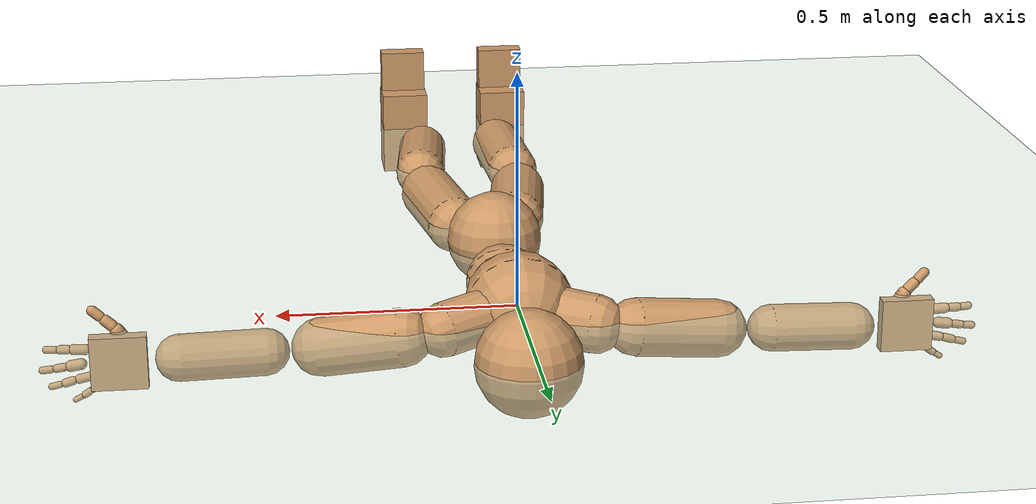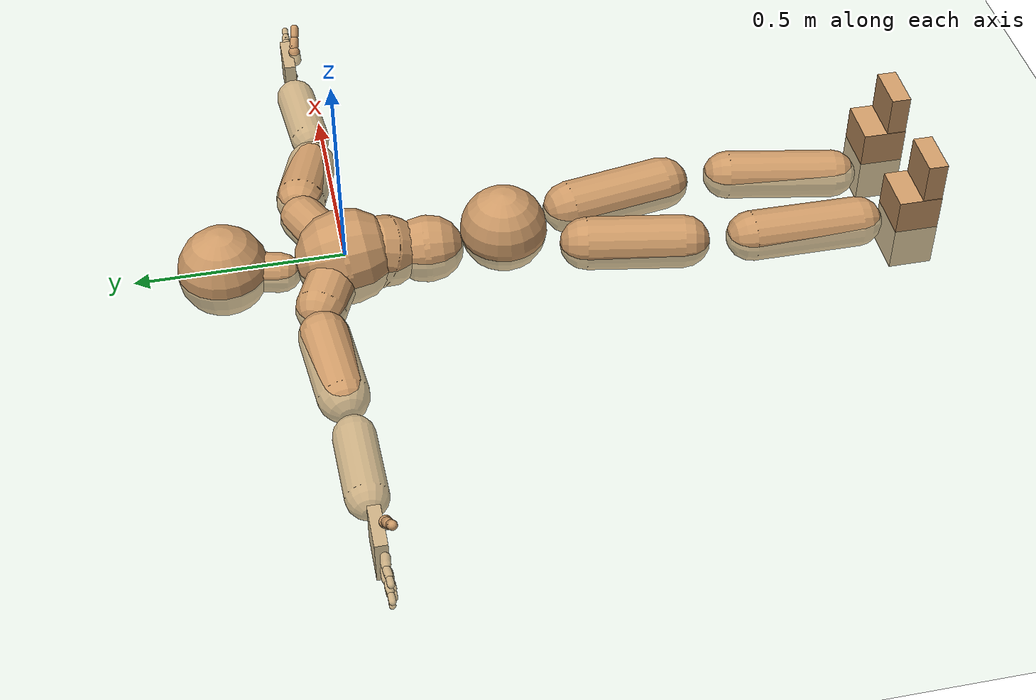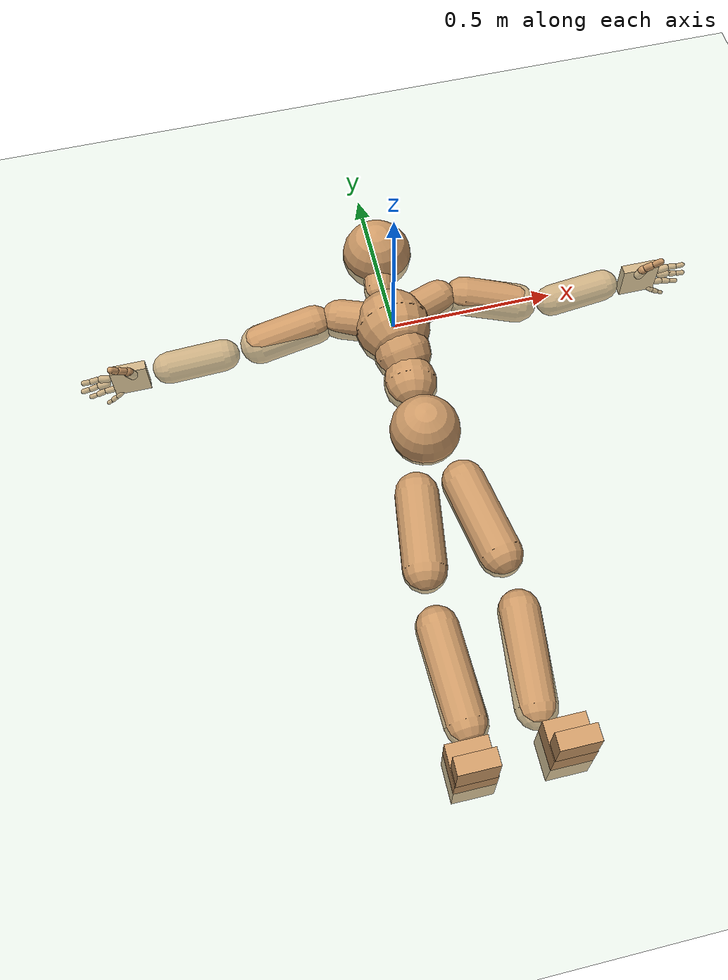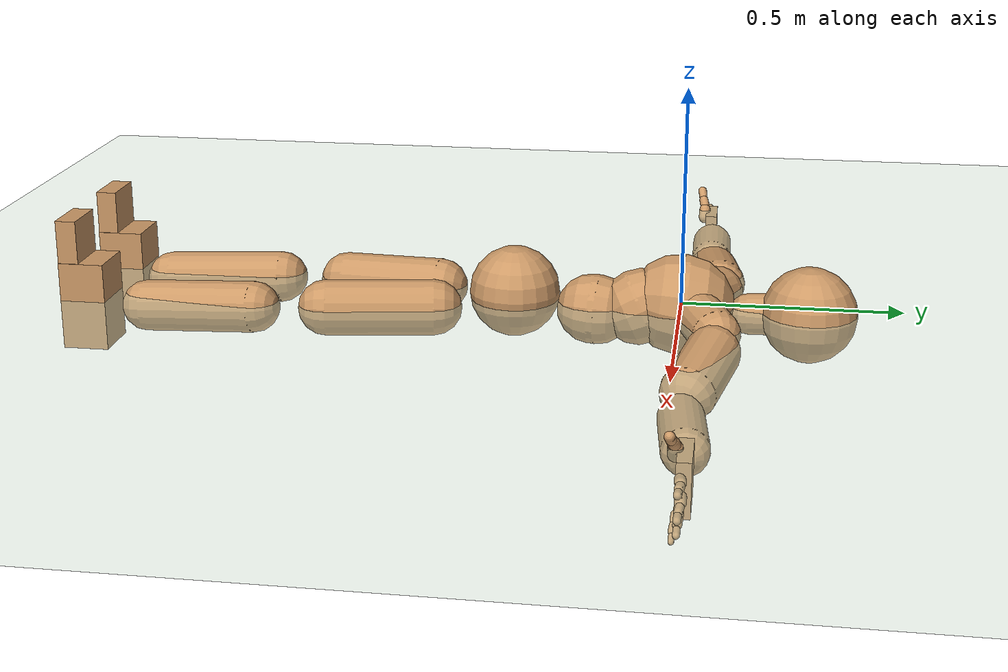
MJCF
<mujoco model="humanoid">
  <compiler coordinate="local"/>
  <default>
    <joint damping="0.0" armature="0.01" stiffness="0.0" limited="true"/>
    <geom conaffinity="1" condim="3" contype="7" margin="0.001" rgba="0.8 0.6 .4 1"/>
  </default>
  <asset>
    <texture type="skybox" builtin="gradient" rgb1=".4 .5 .6" rgb2="0 0 0" width="100" height="100"/>
    <texture builtin="flat" height="1278" mark="cross" markrgb="1 1 1" name="texgeom" random="0.01" rgb1="0.8 0.6 0.4" rgb2="0.8 0.6 0.4" type="cube" width="127"/>
    <texture builtin="checker" height="100" name="texplane" rgb1="0 0 0" rgb2="0.8 0.8 0.8" type="2d" width="100"/>
    <material name="MatPlane" reflectance="0.5" shininess="1" specular="1" texrepeat="60 60" texture="texplane"/>
    <material name="geom" texture="texgeom" texuniform="true"/>
  </asset>
  <worldbody>
    <light cutoff="100" diffuse="1 1 1" dir="-0 0 -1.3" directional="true" exponent="1" pos="0 0 1.3" specular=".1 .1 .1"/>
    <geom conaffinity="1" condim="3" name="floor" pos="0 0 0" rgba="0.8 0.9 0.8 1" size="100 100 .2" type="plane" material="MatPlane"/>
    <body name="Pelvis" pos="0.0025 -0.3857 0.013">
      <freejoint name="Pelvis"/>
      <geom type="sphere" contype="1" conaffinity="1" density="4629.6296296296305" size="0.1051" pos="0.0000 0.0000 0.0000" name="Pelvis"/>
      <body name="L_Hip" pos="0.0562 -0.0969 -0.0269">
        <joint name="L_Hip_x" type="hinge" pos="0 0 0" axis="1 0 0" user="250 2.5 1 500 10 2" armature="0.01" range="-90.0000 90.0000" damping="0" stiffness="0"/>
        <joint name="L_Hip_y" type="hinge" pos="0 0 0" axis="0 1 0" user="250 2.5 1 500 10 2" armature="0.01" range="-90.0000 90.0000" damping="0" stiffness="0"/>
        <joint name="L_Hip_z" type="hinge" pos="0 0 0" axis="0 0 1" user="250 2.5 1 500 10 2" armature="0.01" range="-90.0000 90.0000" damping="0" stiffness="0"/>
        <geom type="capsule" contype="1" conaffinity="1" density="2040.816327" fromto="0.0138 -0.0816 0.0004 0.0550 -0.3264 0.0014" size="0.0648" name="L_Hip"/>
        <body name="L_Knee" pos="0.0688 -0.408 0.0018">
          <joint name="L_Knee_x" type="hinge" pos="0 0 0" axis="1 0 0" user="250 2.5 1 500 10 2" armature="0.01" range="-180.0000 180.0000" damping="0" stiffness="0"/>
          <joint name="L_Knee_y" type="hinge" pos="0 0 0" axis="0 1 0" user="250 2.5 1 500 10 2" armature="0.01" range="-5.6250 5.6250" damping="0" stiffness="0"/>
          <joint name="L_Knee_z" type="hinge" pos="0 0 0" axis="0 0 1" user="250 2.5 1 500 10 2" armature="0.01" range="-5.6250 5.6250" damping="0" stiffness="0"/>
          <geom type="capsule" contype="1" conaffinity="1" density="1234.567901" fromto="-0.0093 -0.0887 -0.0060 -0.0372 -0.3550 -0.0239" size="0.0596" name="L_Knee"/>
          <body name="L_Ankle" pos="-0.0465 -0.4437 -0.0299">
            <joint name="L_Ankle_x" type="hinge" pos="0 0 0" axis="1 0 0" user="150 2.5 1 500 10 2" armature="0.01" range="-90.0000 90.0000" damping="0" stiffness="0"/>
            <joint name="L_Ankle_y" type="hinge" pos="0 0 0" axis="0 1 0" user="150 2.5 1 500 10 2" armature="0.01" range="-90.0000 90.0000" damping="0" stiffness="0"/>
            <joint name="L_Ankle_z" type="hinge" pos="0 0 0" axis="0 0 1" user="150 2.5 1 500 10 2" armature="0.01" range="-90.0000 90.0000" damping="0" stiffness="0"/>
            <geom type="box" density="464.808023" pos="0.0475 -0.0332 0.0270" size="0.0578 0.0529 0.1021" quat="1.0000 0.0000 0.0000 0.0000" name="L_Ankle"/>
            <body name="L_Toe" pos="0.0543 -0.0663 0.1396">
              <joint name="L_Toe_x" type="hinge" pos="0 0 0" axis="1 0 0" user="150 1 1 500 1 1" armature="0.01" range="-90.0000 90.0000" damping="0" stiffness="0"/>
              <joint name="L_Toe_y" type="hinge" pos="0 0 0" axis="0 1 0" user="150 1 1 500 1 1" armature="0.01" range="-45.0000 45.0000" damping="0" stiffness="0"/>
              <joint name="L_Toe_z" type="hinge" pos="0 0 0" axis="0 0 1" user="150 1 1 500 1 1" armature="0.01" range="-45.0000 45.0000" damping="0" stiffness="0"/>
              <geom type="box" density="424.207688" pos="-0.0068 0.0039 0.0308" size="0.0556 0.0237 0.0591" quat="1.0000 0.0000 0.0000 0.0000" name="L_Toe"/>
            </body>
          </body>
        </body>
      </body>
      <body name="R_Hip" pos="-0.0609 -0.1113 -0.018">
        <joint name="R_Hip_x" type="hinge" pos="0 0 0" axis="1 0 0" user="250 2.5 1 500 10 2" armature="0.01" range="-90.0000 90.0000" damping="0" stiffness="0"/>
        <joint name="R_Hip_y" type="hinge" pos="0 0 0" axis="0 1 0" user="250 2.5 1 500 10 2" armature="0.01" range="-90.0000 90.0000" damping="0" stiffness="0"/>
        <joint name="R_Hip_z" type="hinge" pos="0 0 0" axis="0 0 1" user="250 2.5 1 500 10 2" armature="0.01" range="-90.0000 90.0000" damping="0" stiffness="0"/>
        <geom type="capsule" contype="1" conaffinity="1" density="2040.816327" fromto="-0.0113 -0.0775 -0.0019 -0.0453 -0.3100 -0.0075" size="0.0643" name="R_Hip"/>
        <body name="R_Knee" pos="-0.0566 -0.3875 -0.0093">
          <joint name="R_Knee_x" type="hinge" pos="0 0 0" axis="1 0 0" user="250 2.5 1 500 10 2" armature="0.01" range="-180.0000 180.0000" damping="0" stiffness="0"/>
          <joint name="R_Knee_y" type="hinge" pos="0 0 0" axis="0 1 0" user="250 2.5 1 500 10 2" armature="0.01" range="-5.6250 5.6250" damping="0" stiffness="0"/>
          <joint name="R_Knee_z" type="hinge" pos="0 0 0" axis="0 0 1" user="250 2.5 1 500 10 2" armature="0.01" range="-5.6250 5.6250" damping="0" stiffness="0"/>
          <geom type="capsule" contype="1" conaffinity="1" density="1234.567901" fromto="0.0029 -0.0906 -0.0034 0.0115 -0.3624 -0.0134" size="0.0613" name="R_Knee"/>
          <body name="R_Ankle" pos="0.0144 -0.4529 -0.0168">
            <joint name="R_Ankle_x" type="hinge" pos="0 0 0" axis="1 0 0" user="150 1 1 500 10 2" armature="0.01" range="-90.0000 90.0000" damping="0" stiffness="0"/>
            <joint name="R_Ankle_y" type="hinge" pos="0 0 0" axis="0 1 0" user="150 1 1 500 10 2" armature="0.01" range="-90.0000 90.0000" damping="0" stiffness="0"/>
            <joint name="R_Ankle_z" type="hinge" pos="0 0 0" axis="0 0 1" user="150 1 1 500 10 2" armature="0.01" range="-90.0000 90.0000" damping="0" stiffness="0"/>
            <geom type="box" density="464.810838" pos="-0.0278 -0.0301 0.0161" size="0.0578 0.0529 0.1021" quat="1.0000 0.0000 0.0000 0.0000" name="R_Ankle"/>
            <body name="R_Toe" pos="-0.0436 -0.066 0.1404">
              <joint name="R_Toe_x" type="hinge" pos="0 0 0" axis="1 0 0" user="150 1 1 500 1 1" armature="0.01" range="-90.0000 90.0000" damping="0" stiffness="0"/>
              <joint name="R_Toe_y" type="hinge" pos="0 0 0" axis="0 1 0" user="150 1 1 500 1 1" armature="0.01" range="-45.0000 45.0000" damping="0" stiffness="0"/>
              <joint name="R_Toe_z" type="hinge" pos="0 0 0" axis="0 0 1" user="150 1 1 500 1 1" armature="0.01" range="-45.0000 45.0000" damping="0" stiffness="0"/>
              <geom type="box" density="424.223752" pos="0.0158 0.0066 0.0190" size="0.0556 0.0237 0.0591" quat="1.0000 0.0000 0.0000 0.0000" name="R_Toe"/>
            </body>
          </body>
        </body>
      </body>
      <body name="Torso" pos="-0.0036 0.1136 -0.0315">
        <joint name="Torso_x" type="hinge" pos="0 0 0" axis="1 0 0" user="500 5 1 500 10 2" armature="0.01" range="-60.0000 60.0000" damping="0" stiffness="0"/>
        <joint name="Torso_y" type="hinge" pos="0 0 0" axis="0 1 0" user="500 5 1 500 10 2" armature="0.01" range="-60.0000 60.0000" damping="0" stiffness="0"/>
        <joint name="Torso_z" type="hinge" pos="0 0 0" axis="0 0 1" user="500 5 1 500 10 2" armature="0.01" range="-60.0000 60.0000" damping="0" stiffness="0"/>
        <geom type="capsule" contype="1" conaffinity="1" density="2040.816327" fromto="0.0055 0.0659 -0.0033 0.0067 0.0805 -0.0040" size="0.0807" name="Torso"/>
        <body name="Spine" pos="0.0121 0.1464 -0.0073">
          <joint name="Spine_x" type="hinge" pos="0 0 0" axis="1 0 0" user="500 5 1 500 10 2" armature="0.01" range="-60.0000 60.0000" damping="0" stiffness="0"/>
          <joint name="Spine_y" type="hinge" pos="0 0 0" axis="0 1 0" user="500 5 1 500 10 2" armature="0.01" range="-60.0000 60.0000" damping="0" stiffness="0"/>
          <joint name="Spine_z" type="hinge" pos="0 0 0" axis="0 0 1" user="500 5 1 500 10 2" armature="0.01" range="-60.0000 60.0000" damping="0" stiffness="0"/>
          <geom type="capsule" contype="1" conaffinity="1" density="2040.816327" fromto="-0.0053 0.0285 0.0133 -0.0065 0.0348 0.0162" size="0.0881" name="Spine"/>
          <body name="Chest" pos="-0.0118 0.0633 0.0295">
            <joint name="Chest_x" type="hinge" pos="0 0 0" axis="1 0 0" user="500 5 1 500 10 2" armature="0.01" range="-60.0000 60.0000" damping="0" stiffness="0"/>
            <joint name="Chest_y" type="hinge" pos="0 0 0" axis="0 1 0" user="500 5 1 500 10 2" armature="0.01" range="-60.0000 60.0000" damping="0" stiffness="0"/>
            <joint name="Chest_z" type="hinge" pos="0 0 0" axis="0 0 1" user="500 5 1 500 10 2" armature="0.01" range="-60.0000 60.0000" damping="0" stiffness="0"/>
            <geom type="capsule" contype="1" conaffinity="1" density="2040.816327" fromto="-0.0026 0.0560 -0.0065 -0.0031 0.0684 -0.0079" size="0.1154" name="Chest"/>
            <body name="Neck" pos="-0.0143 0.1841 -0.0282">
              <joint name="Neck_x" type="hinge" pos="0 0 0" axis="1 0 0" user="150 1 1 250 50 4" armature="0.01" range="-180.0000 180.0000" damping="0" stiffness="0"/>
              <joint name="Neck_y" type="hinge" pos="0 0 0" axis="0 1 0" user="150 1 1 250 50 4" armature="0.01" range="-180.0000 180.0000" damping="0" stiffness="0"/>
              <joint name="Neck_z" type="hinge" pos="0 0 0" axis="0 0 1" user="150 1 1 250 50 4" armature="0.01" range="-180.0000 180.0000" damping="0" stiffness="0"/>
              <geom type="capsule" contype="1" conaffinity="1" density="1000" fromto="0.0057 0.0335 0.0031 0.0230 0.1338 0.0122" size="0.0477" name="Neck"/>
              <body name="Head" pos="0.0287 0.1673 0.0153">
                <joint name="Head_x" type="hinge" pos="0 0 0" axis="1 0 0" user="150 1 1 250 50 4" armature="0.01" range="-90.0000 90.0000" damping="0" stiffness="0"/>
                <joint name="Head_y" type="hinge" pos="0 0 0" axis="0 1 0" user="150 1 1 250 50 4" armature="0.01" range="-90.0000 90.0000" damping="0" stiffness="0"/>
                <joint name="Head_z" type="hinge" pos="0 0 0" axis="0 0 1" user="150 1 1 250 50 4" armature="0.01" range="-90.0000 90.0000" damping="0" stiffness="0"/>
                <geom type="sphere" contype="1" conaffinity="1" density="1000" size="0.1093" pos="0.0000 0.0000 0.0000" name="Head"/>
              </body>
            </body>
            <body name="L_Thorax" pos="0.0504 0.0952 -0.0038">
              <joint name="L_Thorax_x" type="hinge" pos="0 0 0" axis="1 0 0" user="200 2 1 500 50 4" armature="0.01" range="-180.0000 180.0000" damping="0" stiffness="0"/>
              <joint name="L_Thorax_y" type="hinge" pos="0 0 0" axis="0 1 0" user="200 2 1 500 50 4" armature="0.01" range="-180.0000 180.0000" damping="0" stiffness="0"/>
              <joint name="L_Thorax_z" type="hinge" pos="0 0 0" axis="0 0 1" user="200 2 1 500 50 4" armature="0.01" range="-180.0000 180.0000" damping="0" stiffness="0"/>
              <geom type="capsule" contype="1" conaffinity="1" density="1000" fromto="0.0283 0.0123 -0.0035 0.1131 0.0490 -0.0138" size="0.0566" name="L_Thorax"/>
              <body name="L_Shoulder" pos="0.1414 0.0613 -0.0173">
                <joint name="L_Shoulder_x" type="hinge" pos="0 0 0" axis="1 0 0" user="200 2 1 500 50 4" armature="0.01" range="-180.0000 180.0000" damping="0" stiffness="0"/>
                <joint name="L_Shoulder_y" type="hinge" pos="0 0 0" axis="0 1 0" user="200 2 1 500 50 4" armature="0.01" range="-180.0000 180.0000" damping="0" stiffness="0"/>
                <joint name="L_Shoulder_z" type="hinge" pos="0 0 0" axis="0 0 1" user="200 2 1 500 50 4" armature="0.01" range="-180.0000 180.0000" damping="0" stiffness="0"/>
                <geom type="capsule" contype="1" conaffinity="1" density="1000" fromto="0.0547 -0.0150 -0.0100 0.2188 -0.0598 -0.0402" size="0.0611" name="L_Shoulder"/>
                <body name="L_Elbow" pos="0.2735 -0.0748 -0.0502">
                  <joint name="L_Elbow_x" type="hinge" pos="0 0 0" axis="1 0 0" user="150 1 1 150 10 2" armature="0.01" range="-720.0000 720.0000" damping="0" stiffness="0"/>
                  <joint name="L_Elbow_y" type="hinge" pos="0 0 0" axis="0 1 0" user="150 1 1 150 10 2" armature="0.01" range="-720.0000 720.0000" damping="0" stiffness="0"/>
                  <joint name="L_Elbow_z" type="hinge" pos="0 0 0" axis="0 0 1" user="150 1 1 150 10 2" armature="0.01" range="-720.0000 720.0000" damping="0" stiffness="0"/>
                  <geom type="capsule" contype="1" conaffinity="1" density="1000" fromto="0.0584 0.0055 0.0011 0.2336 0.0222 0.0044" size="0.049" name="L_Elbow"/>
                  <body name="L_Wrist" pos="0.2919 0.0277 0.0055">
                    <joint name="L_Wrist_x" type="hinge" pos="0 0 0" axis="1 0 0" user="100 1 1 150 1 1" armature="0.01" range="-180.0000 180.0000" damping="0" stiffness="0"/>
                    <joint name="L_Wrist_y" type="hinge" pos="0 0 0" axis="0 1 0" user="100 1 1 150 1 1" armature="0.01" range="-180.0000 180.0000" damping="0" stiffness="0"/>
                    <joint name="L_Wrist_z" type="hinge" pos="0 0 0" axis="0 0 1" user="100 1 1 150 1 1" armature="0.01" range="-180.0000 180.0000" damping="0" stiffness="0"/>
                    <geom type="box" density="1235.404475" pos="0.0633 -0.0017 -0.0020" size="0.0578 0.0148 0.0565" quat="1.0000 0.0000 0.0000 0.0000" name="L_Wrist"/>
                    <body name="L_Index1" pos="0.1223 -0.0083 0.0249">
                      <joint name="L_Index1_x" type="hinge" pos="0 0 0" axis="1 0 0" user="100 10 1 150" armature="0.01" range="-180.0000 180.0000" damping="0" stiffness="0"/>
                      <joint name="L_Index1_y" type="hinge" pos="0 0 0" axis="0 1 0" user="100 10 1 150" armature="0.01" range="-180.0000 180.0000" damping="0" stiffness="0"/>
                      <joint name="L_Index1_z" type="hinge" pos="0 0 0" axis="0 0 1" user="100 10 1 150" armature="0.01" range="-180.0000 180.0000" damping="0" stiffness="0"/>
                      <geom type="capsule" contype="1" conaffinity="1" density="1000" fromto="0.0073 0.0006 0.0006 0.0293 0.0024 0.0026" size="0.011" name="L_Index1"/>
                      <body name="L_Index2" pos="0.0366 0.003 0.0032">
                        <joint name="L_Index2_x" type="hinge" pos="0 0 0" axis="1 0 0" user="100 10 1 150" armature="0.01" range="-180.0000 180.0000" damping="0" stiffness="0"/>
                        <joint name="L_Index2_y" type="hinge" pos="0 0 0" axis="0 1 0" user="100 10 1 150" armature="0.01" range="-180.0000 180.0000" damping="0" stiffness="0"/>
                        <joint name="L_Index2_z" type="hinge" pos="0 0 0" axis="0 0 1" user="100 10 1 150" armature="0.01" range="-180.0000 180.0000" damping="0" stiffness="0"/>
                        <geom type="capsule" contype="1" conaffinity="1" density="1000" fromto="0.0052 -0.0005 -0.0001 0.0206 -0.0022 -0.0004" size="0.0091" name="L_Index2"/>
                        <body name="L_Index3" pos="0.0258 -0.0027 -0.0005">
                          <joint name="L_Index3_x" type="hinge" pos="0 0 0" axis="1 0 0" user="100 10 1 150" armature="0.01" range="-180.0000 180.0000" damping="0" stiffness="0"/>
                          <joint name="L_Index3_y" type="hinge" pos="0 0 0" axis="0 1 0" user="100 10 1 150" armature="0.01" range="-180.0000 180.0000" damping="0" stiffness="0"/>
                          <joint name="L_Index3_z" type="hinge" pos="0 0 0" axis="0 0 1" user="100 10 1 150" armature="0.01" range="-180.0000 180.0000" damping="0" stiffness="0"/>
                          <geom type="capsule" contype="1" conaffinity="1" density="1000" fromto="0.0056 -0.0001 0.0003 0.0222 -0.0006 0.0012" size="0.0077" name="L_Index3"/>
                        </body>
                      </body>
                    </body>
                    <body name="L_Middle1" pos="0.1317 -0.0056 -0.0038">
                      <joint name="L_Middle1_x" type="hinge" pos="0 0 0" axis="1 0 0" user="100 10 1 150" armature="0.01" range="-180.0000 180.0000" damping="0" stiffness="0"/>
                      <joint name="L_Middle1_y" type="hinge" pos="0 0 0" axis="0 1 0" user="100 10 1 150" armature="0.01" range="-180.0000 180.0000" damping="0" stiffness="0"/>
                      <joint name="L_Middle1_z" type="hinge" pos="0 0 0" axis="0 0 1" user="100 10 1 150" armature="0.01" range="-180.0000 180.0000" damping="0" stiffness="0"/>
                      <geom type="capsule" contype="1" conaffinity="1" density="1000" fromto="0.0071 0.0002 -0.0009 0.0282 0.0007 -0.0036" size="0.0114" name="L_Middle1"/>
                      <body name="L_Middle2" pos="0.0353 0.0008 -0.0046">
                        <joint name="L_Middle2_x" type="hinge" pos="0 0 0" axis="1 0 0" user="100 10 1 150" armature="0.01" range="-180.0000 180.0000" damping="0" stiffness="0"/>
                        <joint name="L_Middle2_y" type="hinge" pos="0 0 0" axis="0 1 0" user="100 10 1 150" armature="0.01" range="-180.0000 180.0000" damping="0" stiffness="0"/>
                        <joint name="L_Middle2_z" type="hinge" pos="0 0 0" axis="0 0 1" user="100 10 1 150" armature="0.01" range="-180.0000 180.0000" damping="0" stiffness="0"/>
                        <geom type="capsule" contype="1" conaffinity="1" density="1000" fromto="0.0054 -0.0005 -0.0010 0.0215 -0.0022 -0.0039" size="0.0085" name="L_Middle2"/>
                        <body name="L_Middle3" pos="0.0269 -0.0027 -0.0049">
                          <joint name="L_Middle3_x" type="hinge" pos="0 0 0" axis="1 0 0" user="100 10 1 150" armature="0.01" range="-180.0000 180.0000" damping="0" stiffness="0"/>
                          <joint name="L_Middle3_y" type="hinge" pos="0 0 0" axis="0 1 0" user="100 10 1 150" armature="0.01" range="-180.0000 180.0000" damping="0" stiffness="0"/>
                          <joint name="L_Middle3_z" type="hinge" pos="0 0 0" axis="0 0 1" user="100 10 1 150" armature="0.01" range="-180.0000 180.0000" damping="0" stiffness="0"/>
                          <geom type="capsule" contype="1" conaffinity="1" density="1000" fromto="0.0058 -0.0001 -0.0006 0.0231 -0.0006 -0.0023" size="0.0075" name="L_Middle3"/>
                        </body>
                      </body>
                    </body>
                    <body name="L_Pinky1" pos="0.1017 -0.0152 -0.0527">
                      <joint name="L_Pinky1_x" type="hinge" pos="0 0 0" axis="1 0 0" user="100 10 1 150" armature="0.01" range="-180.0000 180.0000" damping="0" stiffness="0"/>
                      <joint name="L_Pinky1_y" type="hinge" pos="0 0 0" axis="0 1 0" user="100 10 1 150" armature="0.01" range="-180.0000 180.0000" damping="0" stiffness="0"/>
                      <joint name="L_Pinky1_z" type="hinge" pos="0 0 0" axis="0 0 1" user="100 10 1 150" armature="0.01" range="-180.0000 180.0000" damping="0" stiffness="0"/>
                      <geom type="capsule" contype="1" conaffinity="1" density="1000" fromto="0.0038 -0.0003 -0.0028 0.0153 -0.0014 -0.0113" size="0.0079" name="L_Pinky1"/>
                      <body name="L_Pinky2" pos="0.0191 -0.0017 -0.0142">
                        <joint name="L_Pinky2_x" type="hinge" pos="0 0 0" axis="1 0 0" user="100 10 1 150" armature="0.01" range="-180.0000 180.0000" damping="0" stiffness="0"/>
                        <joint name="L_Pinky2_y" type="hinge" pos="0 0 0" axis="0 1 0" user="100 10 1 150" armature="0.01" range="-180.0000 180.0000" damping="0" stiffness="0"/>
                        <joint name="L_Pinky2_z" type="hinge" pos="0 0 0" axis="0 0 1" user="100 10 1 150" armature="0.01" range="-180.0000 180.0000" damping="0" stiffness="0"/>
                        <geom type="capsule" contype="1" conaffinity="1" density="1000" fromto="0.0037 -0.0005 -0.0025 0.0147 -0.0020 -0.0102" size="0.0075" name="L_Pinky2"/>
                        <body name="L_Pinky3" pos="0.0184 -0.0024 -0.0127">
                          <joint name="L_Pinky3_x" type="hinge" pos="0 0 0" axis="1 0 0" user="100 10 1 150" armature="0.01" range="-180.0000 180.0000" damping="0" stiffness="0"/>
                          <joint name="L_Pinky3_y" type="hinge" pos="0 0 0" axis="0 1 0" user="100 10 1 150" armature="0.01" range="-180.0000 180.0000" damping="0" stiffness="0"/>
                          <joint name="L_Pinky3_z" type="hinge" pos="0 0 0" axis="0 0 1" user="100 10 1 150" armature="0.01" range="-180.0000 180.0000" damping="0" stiffness="0"/>
                          <geom type="capsule" contype="1" conaffinity="1" density="1000" fromto="0.0041 -0.0001 -0.0021 0.0163 -0.0004 -0.0086" size="0.0057" name="L_Pinky3"/>
                        </body>
                      </body>
                    </body>
                    <body name="L_Ring1" pos="0.1178 -0.0089 -0.0327">
                      <joint name="L_Ring1_x" type="hinge" pos="0 0 0" axis="1 0 0" user="100 10 1 150" armature="0.01" range="-180.0000 180.0000" damping="0" stiffness="0"/>
                      <joint name="L_Ring1_y" type="hinge" pos="0 0 0" axis="0 1 0" user="100 10 1 150" armature="0.01" range="-180.0000 180.0000" damping="0" stiffness="0"/>
                      <joint name="L_Ring1_z" type="hinge" pos="0 0 0" axis="0 0 1" user="100 10 1 150" armature="0.01" range="-180.0000 180.0000" damping="0" stiffness="0"/>
                      <geom type="capsule" contype="1" conaffinity="1" density="1000" fromto="0.0067 0.0004 -0.0012 0.0267 0.0015 -0.0050" size="0.0095" name="L_Ring1"/>
                      <body name="L_Ring2" pos="0.0334 0.0018 -0.0062">
                        <joint name="L_Ring2_x" type="hinge" pos="0 0 0" axis="1 0 0" user="100 10 1 150" armature="0.01" range="-180.0000 180.0000" damping="0" stiffness="0"/>
                        <joint name="L_Ring2_y" type="hinge" pos="0 0 0" axis="0 1 0" user="100 10 1 150" armature="0.01" range="-180.0000 180.0000" damping="0" stiffness="0"/>
                        <joint name="L_Ring2_z" type="hinge" pos="0 0 0" axis="0 0 1" user="100 10 1 150" armature="0.01" range="-180.0000 180.0000" damping="0" stiffness="0"/>
                        <geom type="capsule" contype="1" conaffinity="1" density="1000" fromto="0.0053 -0.0004 -0.0016 0.0212 -0.0016 -0.0066" size="0.0088" name="L_Ring2"/>
                        <body name="L_Ring3" pos="0.0265 -0.002 -0.0082">
                          <joint name="L_Ring3_x" type="hinge" pos="0 0 0" axis="1 0 0" user="100 10 1 150" armature="0.01" range="-180.0000 180.0000" damping="0" stiffness="0"/>
                          <joint name="L_Ring3_y" type="hinge" pos="0 0 0" axis="0 1 0" user="100 10 1 150" armature="0.01" range="-180.0000 180.0000" damping="0" stiffness="0"/>
                          <joint name="L_Ring3_z" type="hinge" pos="0 0 0" axis="0 0 1" user="100 10 1 150" armature="0.01" range="-180.0000 180.0000" damping="0" stiffness="0"/>
                          <geom type="capsule" contype="1" conaffinity="1" density="1000" fromto="0.0057 0.0000 -0.0012 0.0228 0.0000 -0.0050" size="0.0069" name="L_Ring3"/>
                        </body>
                      </body>
                    </body>
                    <body name="L_Thumb1" pos="0.049 -0.0214 0.0341">
                      <joint name="L_Thumb1_x" type="hinge" pos="0 0 0" axis="1 0 0" user="100 10 1 150" armature="0.01" range="-180.0000 180.0000" damping="0" stiffness="0"/>
                      <joint name="L_Thumb1_y" type="hinge" pos="0 0 0" axis="0 1 0" user="100 10 1 150" armature="0.01" range="-180.0000 180.0000" damping="0" stiffness="0"/>
                      <joint name="L_Thumb1_z" type="hinge" pos="0 0 0" axis="0 0 1" user="100 10 1 150" armature="0.01" range="-180.0000 180.0000" damping="0" stiffness="0"/>
                      <geom type="capsule" contype="1" conaffinity="1" density="1000" fromto="0.0040 0.0003 0.0062 0.0158 0.0012 0.0248" size="0.0147" name="L_Thumb1"/>
                      <body name="L_Thumb2" pos="0.0198 0.0015 0.031">
                        <joint name="L_Thumb2_x" type="hinge" pos="0 0 0" axis="1 0 0" user="100 10 1 150" armature="0.01" range="-180.0000 180.0000" damping="0" stiffness="0"/>
                        <joint name="L_Thumb2_y" type="hinge" pos="0 0 0" axis="0 1 0" user="100 10 1 150" armature="0.01" range="-180.0000 180.0000" damping="0" stiffness="0"/>
                        <joint name="L_Thumb2_z" type="hinge" pos="0 0 0" axis="0 0 1" user="100 10 1 150" armature="0.01" range="-180.0000 180.0000" damping="0" stiffness="0"/>
                        <geom type="capsule" contype="1" conaffinity="1" density="1000" fromto="0.0047 -0.0013 0.0037 0.0189 -0.0050 0.0150" size="0.0117" name="L_Thumb2"/>
                        <body name="L_Thumb3" pos="0.0236 -0.0063 0.0187">
                          <joint name="L_Thumb3_x" type="hinge" pos="0 0 0" axis="1 0 0" user="100 10 1 150" armature="0.01" range="-180.0000 180.0000" damping="0" stiffness="0"/>
                          <joint name="L_Thumb3_y" type="hinge" pos="0 0 0" axis="0 1 0" user="100 10 1 150" armature="0.01" range="-180.0000 180.0000" damping="0" stiffness="0"/>
                          <joint name="L_Thumb3_z" type="hinge" pos="0 0 0" axis="0 0 1" user="100 10 1 150" armature="0.01" range="-180.0000 180.0000" damping="0" stiffness="0"/>
                          <geom type="capsule" contype="1" conaffinity="1" density="1000" fromto="0.0051 -0.0009 0.0041 0.0205 -0.0034 0.0166" size="0.0106" name="L_Thumb3"/>
                        </body>
                      </body>
                    </body>
                  </body>
                </body>
              </body>
            </body>
            <body name="R_Thorax" pos="-0.0531 0.0938 -0.011">
              <joint name="R_Thorax_x" type="hinge" pos="0 0 0" axis="1 0 0" user="200 2 1 150 10 2" armature="0.01" range="-180.0000 180.0000" damping="0" stiffness="0"/>
              <joint name="R_Thorax_y" type="hinge" pos="0 0 0" axis="0 1 0" user="200 2 1 150 10 2" armature="0.01" range="-180.0000 180.0000" damping="0" stiffness="0"/>
              <joint name="R_Thorax_z" type="hinge" pos="0 0 0" axis="0 0 1" user="200 2 1 150 10 2" armature="0.01" range="-180.0000 180.0000" damping="0" stiffness="0"/>
              <geom type="capsule" contype="1" conaffinity="1" density="1000" fromto="-0.0246 0.0114 -0.0028 -0.0985 0.0456 -0.0111" size="0.0618" name="R_Thorax"/>
              <body name="R_Shoulder" pos="-0.1231 0.057 -0.0139">
                <joint name="R_Shoulder_x" type="hinge" pos="0 0 0" axis="1 0 0" user="200 2 1 250 10 2" armature="0.01" range="-180.0000 180.0000" damping="0" stiffness="0"/>
                <joint name="R_Shoulder_y" type="hinge" pos="0 0 0" axis="0 1 0" user="200 2 1 250 10 2" armature="0.01" range="-180.0000 180.0000" damping="0" stiffness="0"/>
                <joint name="R_Shoulder_z" type="hinge" pos="0 0 0" axis="0 0 1" user="200 2 1 250 10 2" armature="0.01" range="-180.0000 180.0000" damping="0" stiffness="0"/>
                <geom type="capsule" contype="1" conaffinity="1" density="1000" fromto="-0.0587 -0.0065 -0.0065 -0.2349 -0.0260 -0.0258" size="0.0609" name="R_Shoulder"/>
                <body name="R_Elbow" pos="-0.2937 -0.0325 -0.0323">
                  <joint name="R_Elbow_x" type="hinge" pos="0 0 0" axis="1 0 0" user="150 1 1 150 10 2" armature="0.01" range="-720.0000 720.0000" damping="0" stiffness="0"/>
                  <joint name="R_Elbow_y" type="hinge" pos="0 0 0" axis="0 1 0" user="150 1 1 150 10 2" armature="0.01" range="-720.0000 720.0000" damping="0" stiffness="0"/>
                  <joint name="R_Elbow_z" type="hinge" pos="0 0 0" axis="0 0 1" user="150 1 1 150 10 2" armature="0.01" range="-720.0000 720.0000" damping="0" stiffness="0"/>
                  <geom type="capsule" contype="1" conaffinity="1" density="1000" fromto="-0.0575 -0.0011 -0.0018 -0.2302 -0.0044 -0.0072" size="0.0494" name="R_Elbow"/>
                  <body name="R_Wrist" pos="-0.2877 -0.0055 -0.009">
                    <joint name="R_Wrist_x" type="hinge" pos="0 0 0" axis="1 0 0" user="100 1 1 150 1 1" armature="0.01" range="-180.0000 180.0000" damping="0" stiffness="0"/>
                    <joint name="R_Wrist_y" type="hinge" pos="0 0 0" axis="0 1 0" user="100 1 1 150 1 1" armature="0.01" range="-180.0000 180.0000" damping="0" stiffness="0"/>
                    <joint name="R_Wrist_z" type="hinge" pos="0 0 0" axis="0 0 1" user="100 1 1 150 1 1" armature="0.01" range="-180.0000 180.0000" damping="0" stiffness="0"/>
                    <geom type="box" density="1248.022723" pos="-0.0642 -0.0052 -0.0017" size="0.0552 0.0148 0.0565" quat="1.0000 0.0000 0.0000 0.0000" name="R_Wrist"/>
                    <body name="R_Index1" pos="-0.1202 -0.0117 0.0252">
                      <joint name="R_Index1_x" type="hinge" pos="0 0 0" axis="1 0 0" user="100 10 1 150" armature="0.01" range="-180.0000 180.0000" damping="0" stiffness="0"/>
                      <joint name="R_Index1_y" type="hinge" pos="0 0 0" axis="0 1 0" user="100 10 1 150" armature="0.01" range="-180.0000 180.0000" damping="0" stiffness="0"/>
                      <joint name="R_Index1_z" type="hinge" pos="0 0 0" axis="0 0 1" user="100 10 1 150" armature="0.01" range="-180.0000 180.0000" damping="0" stiffness="0"/>
                      <geom type="capsule" contype="1" conaffinity="1" density="1000" fromto="-0.0073 0.0006 0.0006 -0.0293 0.0024 0.0026" size="0.011" name="R_Index1"/>
                      <body name="R_Index2" pos="-0.0366 0.003 0.0032">
                        <joint name="R_Index2_x" type="hinge" pos="0 0 0" axis="1 0 0" user="100 10 1 150" armature="0.01" range="-180.0000 180.0000" damping="0" stiffness="0"/>
                        <joint name="R_Index2_y" type="hinge" pos="0 0 0" axis="0 1 0" user="100 10 1 150" armature="0.01" range="-180.0000 180.0000" damping="0" stiffness="0"/>
                        <joint name="R_Index2_z" type="hinge" pos="0 0 0" axis="0 0 1" user="100 10 1 150" armature="0.01" range="-180.0000 180.0000" damping="0" stiffness="0"/>
                        <geom type="capsule" contype="1" conaffinity="1" density="1000" fromto="-0.0052 -0.0005 -0.0001 -0.0206 -0.0022 -0.0004" size="0.0091" name="R_Index2"/>
                        <body name="R_Index3" pos="-0.0258 -0.0027 -0.0005">
                          <joint name="R_Index3_x" type="hinge" pos="0 0 0" axis="1 0 0" user="100 10 1 150" armature="0.01" range="-180.0000 180.0000" damping="0" stiffness="0"/>
                          <joint name="R_Index3_y" type="hinge" pos="0 0 0" axis="0 1 0" user="100 10 1 150" armature="0.01" range="-180.0000 180.0000" damping="0" stiffness="0"/>
                          <joint name="R_Index3_z" type="hinge" pos="0 0 0" axis="0 0 1" user="100 10 1 150" armature="0.01" range="-180.0000 180.0000" damping="0" stiffness="0"/>
                          <geom type="capsule" contype="1" conaffinity="1" density="1000" fromto="-0.0048 -0.0001 0.0003 -0.0190 -0.0006 0.0012" size="0.008" name="R_Index3"/>
                        </body>
                      </body>
                    </body>
                    <body name="R_Middle1" pos="-0.1296 -0.0091 -0.0035">
                      <joint name="R_Middle1_x" type="hinge" pos="0 0 0" axis="1 0 0" user="100 10 1 150" armature="0.01" range="-180.0000 180.0000" damping="0" stiffness="0"/>
                      <joint name="R_Middle1_y" type="hinge" pos="0 0 0" axis="0 1 0" user="100 10 1 150" armature="0.01" range="-180.0000 180.0000" damping="0" stiffness="0"/>
                      <joint name="R_Middle1_z" type="hinge" pos="0 0 0" axis="0 0 1" user="100 10 1 150" armature="0.01" range="-180.0000 180.0000" damping="0" stiffness="0"/>
                      <geom type="capsule" contype="1" conaffinity="1" density="1000" fromto="-0.0071 0.0002 -0.0009 -0.0282 0.0007 -0.0036" size="0.0114" name="R_Middle1"/>
                      <body name="R_Middle2" pos="-0.0353 0.0008 -0.0046">
                        <joint name="R_Middle2_x" type="hinge" pos="0 0 0" axis="1 0 0" user="100 10 1 150" armature="0.01" range="-180.0000 180.0000" damping="0" stiffness="0"/>
                        <joint name="R_Middle2_y" type="hinge" pos="0 0 0" axis="0 1 0" user="100 10 1 150" armature="0.01" range="-180.0000 180.0000" damping="0" stiffness="0"/>
                        <joint name="R_Middle2_z" type="hinge" pos="0 0 0" axis="0 0 1" user="100 10 1 150" armature="0.01" range="-180.0000 180.0000" damping="0" stiffness="0"/>
                        <geom type="capsule" contype="1" conaffinity="1" density="1000" fromto="-0.0054 -0.0005 -0.0010 -0.0215 -0.0022 -0.0039" size="0.0085" name="R_Middle2"/>
                        <body name="R_Middle3" pos="-0.0269 -0.0027 -0.0049">
                          <joint name="R_Middle3_x" type="hinge" pos="0 0 0" axis="1 0 0" user="100 10 1 150" armature="0.01" range="-180.0000 180.0000" damping="0" stiffness="0"/>
                          <joint name="R_Middle3_y" type="hinge" pos="0 0 0" axis="0 1 0" user="100 10 1 150" armature="0.01" range="-180.0000 180.0000" damping="0" stiffness="0"/>
                          <joint name="R_Middle3_z" type="hinge" pos="0 0 0" axis="0 0 1" user="100 10 1 150" armature="0.01" range="-180.0000 180.0000" damping="0" stiffness="0"/>
                          <geom type="capsule" contype="1" conaffinity="1" density="1000" fromto="-0.0050 -0.0001 -0.0006 -0.0199 -0.0006 -0.0023" size="0.0078" name="R_Middle3"/>
                        </body>
                      </body>
                    </body>
                    <body name="R_Pinky1" pos="-0.0996 -0.0187 -0.0524">
                      <joint name="R_Pinky1_x" type="hinge" pos="0 0 0" axis="1 0 0" user="100 10 1 150" armature="0.01" range="-180.0000 180.0000" damping="0" stiffness="0"/>
                      <joint name="R_Pinky1_y" type="hinge" pos="0 0 0" axis="0 1 0" user="100 10 1 150" armature="0.01" range="-180.0000 180.0000" damping="0" stiffness="0"/>
                      <joint name="R_Pinky1_z" type="hinge" pos="0 0 0" axis="0 0 1" user="100 10 1 150" armature="0.01" range="-180.0000 180.0000" damping="0" stiffness="0"/>
                      <geom type="capsule" contype="1" conaffinity="1" density="1000" fromto="-0.0038 -0.0003 -0.0028 -0.0153 -0.0014 -0.0113" size="0.0079" name="R_Pinky1"/>
                      <body name="R_Pinky2" pos="-0.0191 -0.0017 -0.0142">
                        <joint name="R_Pinky2_x" type="hinge" pos="0 0 0" axis="1 0 0" user="100 10 1 150" armature="0.01" range="-180.0000 180.0000" damping="0" stiffness="0"/>
                        <joint name="R_Pinky2_y" type="hinge" pos="0 0 0" axis="0 1 0" user="100 10 1 150" armature="0.01" range="-180.0000 180.0000" damping="0" stiffness="0"/>
                        <joint name="R_Pinky2_z" type="hinge" pos="0 0 0" axis="0 0 1" user="100 10 1 150" armature="0.01" range="-180.0000 180.0000" damping="0" stiffness="0"/>
                        <geom type="capsule" contype="1" conaffinity="1" density="1000" fromto="-0.0037 -0.0005 -0.0025 -0.0147 -0.0020 -0.0102" size="0.0075" name="R_Pinky2"/>
                        <body name="R_Pinky3" pos="-0.0184 -0.0024 -0.0127">
                          <joint name="R_Pinky3_x" type="hinge" pos="0 0 0" axis="1 0 0" user="100 10 1 150" armature="0.01" range="-180.0000 180.0000" damping="0" stiffness="0"/>
                          <joint name="R_Pinky3_y" type="hinge" pos="0 0 0" axis="0 1 0" user="100 10 1 150" armature="0.01" range="-180.0000 180.0000" damping="0" stiffness="0"/>
                          <joint name="R_Pinky3_z" type="hinge" pos="0 0 0" axis="0 0 1" user="100 10 1 150" armature="0.01" range="-180.0000 180.0000" damping="0" stiffness="0"/>
                          <geom type="capsule" contype="1" conaffinity="1" density="1000" fromto="-0.0033 -0.0001 -0.0021 -0.0131 -0.0004 -0.0086" size="0.006" name="R_Pinky3"/>
                        </body>
                      </body>
                    </body>
                    <body name="R_Ring1" pos="-0.1158 -0.0124 -0.0324">
                      <joint name="R_Ring1_x" type="hinge" pos="0 0 0" axis="1 0 0" user="100 10 1 150" armature="0.01" range="-180.0000 180.0000" damping="0" stiffness="0"/>
                      <joint name="R_Ring1_y" type="hinge" pos="0 0 0" axis="0 1 0" user="100 10 1 150" armature="0.01" range="-180.0000 180.0000" damping="0" stiffness="0"/>
                      <joint name="R_Ring1_z" type="hinge" pos="0 0 0" axis="0 0 1" user="100 10 1 150" armature="0.01" range="-180.0000 180.0000" damping="0" stiffness="0"/>
                      <geom type="capsule" contype="1" conaffinity="1" density="1000" fromto="-0.0067 0.0004 -0.0012 -0.0267 0.0015 -0.0050" size="0.0095" name="R_Ring1"/>
                      <body name="R_Ring2" pos="-0.0334 0.0018 -0.0062">
                        <joint name="R_Ring2_x" type="hinge" pos="0 0 0" axis="1 0 0" user="100 10 1 150" armature="0.01" range="-180.0000 180.0000" damping="0" stiffness="0"/>
                        <joint name="R_Ring2_y" type="hinge" pos="0 0 0" axis="0 1 0" user="100 10 1 150" armature="0.01" range="-180.0000 180.0000" damping="0" stiffness="0"/>
                        <joint name="R_Ring2_z" type="hinge" pos="0 0 0" axis="0 0 1" user="100 10 1 150" armature="0.01" range="-180.0000 180.0000" damping="0" stiffness="0"/>
                        <geom type="capsule" contype="1" conaffinity="1" density="1000" fromto="-0.0053 -0.0004 -0.0016 -0.0212 -0.0016 -0.0066" size="0.0088" name="R_Ring2"/>
                        <body name="R_Ring3" pos="-0.0265 -0.002 -0.0082">
                          <joint name="R_Ring3_x" type="hinge" pos="0 0 0" axis="1 0 0" user="100 10 1 150" armature="0.01" range="-180.0000 180.0000" damping="0" stiffness="0"/>
                          <joint name="R_Ring3_y" type="hinge" pos="0 0 0" axis="0 1 0" user="100 10 1 150" armature="0.01" range="-180.0000 180.0000" damping="0" stiffness="0"/>
                          <joint name="R_Ring3_z" type="hinge" pos="0 0 0" axis="0 0 1" user="100 10 1 150" armature="0.01" range="-180.0000 180.0000" damping="0" stiffness="0"/>
                          <geom type="capsule" contype="1" conaffinity="1" density="1000" fromto="-0.0049 0.0000 -0.0012 -0.0196 0.0000 -0.0050" size="0.0072" name="R_Ring3"/>
                        </body>
                      </body>
                    </body>
                    <body name="R_Thumb1" pos="-0.0469 -0.0249 0.0344">
                      <joint name="R_Thumb1_x" type="hinge" pos="0 0 0" axis="1 0 0" user="100 10 1 150" armature="0.01" range="-180.0000 180.0000" damping="0" stiffness="0"/>
                      <joint name="R_Thumb1_y" type="hinge" pos="0 0 0" axis="0 1 0" user="100 10 1 150" armature="0.01" range="-180.0000 180.0000" damping="0" stiffness="0"/>
                      <joint name="R_Thumb1_z" type="hinge" pos="0 0 0" axis="0 0 1" user="100 10 1 150" armature="0.01" range="-180.0000 180.0000" damping="0" stiffness="0"/>
                      <geom type="capsule" contype="1" conaffinity="1" density="1000" fromto="-0.0040 0.0003 0.0062 -0.0158 0.0012 0.0248" size="0.0147" name="R_Thumb1"/>
                      <body name="R_Thumb2" pos="-0.0198 0.0015 0.031">
                        <joint name="R_Thumb2_x" type="hinge" pos="0 0 0" axis="1 0 0" user="100 10 1 150" armature="0.01" range="-180.0000 180.0000" damping="0" stiffness="0"/>
                        <joint name="R_Thumb2_y" type="hinge" pos="0 0 0" axis="0 1 0" user="100 10 1 150" armature="0.01" range="-180.0000 180.0000" damping="0" stiffness="0"/>
                        <joint name="R_Thumb2_z" type="hinge" pos="0 0 0" axis="0 0 1" user="100 10 1 150" armature="0.01" range="-180.0000 180.0000" damping="0" stiffness="0"/>
                        <geom type="capsule" contype="1" conaffinity="1" density="1000" fromto="-0.0047 -0.0013 0.0037 -0.0189 -0.0050 0.0150" size="0.0117" name="R_Thumb2"/>
                        <body name="R_Thumb3" pos="-0.0236 -0.0063 0.0187">
                          <joint name="R_Thumb3_x" type="hinge" pos="0 0 0" axis="1 0 0" user="100 10 1 150" armature="0.01" range="-180.0000 180.0000" damping="0" stiffness="0"/>
                          <joint name="R_Thumb3_y" type="hinge" pos="0 0 0" axis="0 1 0" user="100 10 1 150" armature="0.01" range="-180.0000 180.0000" damping="0" stiffness="0"/>
                          <joint name="R_Thumb3_z" type="hinge" pos="0 0 0" axis="0 0 1" user="100 10 1 150" armature="0.01" range="-180.0000 180.0000" damping="0" stiffness="0"/>
                          <geom type="capsule" contype="1" conaffinity="1" density="1000" fromto="-0.0043 -0.0009 0.0041 -0.0173 -0.0034 0.0166" size="0.0108" name="R_Thumb3"/>
                        </body>
                      </body>
                    </body>
                  </body>
                </body>
              </body>
            </body>
          </body>
        </body>
      </body>
    </body>
  </worldbody>
  <actuator>
    <motor name="L_Hip_x" joint="L_Hip_x" gear="1"/>
    <motor name="L_Hip_y" joint="L_Hip_y" gear="1"/>
    <motor name="L_Hip_z" joint="L_Hip_z" gear="1"/>
    <motor name="L_Knee_x" joint="L_Knee_x" gear="1"/>
    <motor name="L_Knee_y" joint="L_Knee_y" gear="1"/>
    <motor name="L_Knee_z" joint="L_Knee_z" gear="1"/>
    <motor name="L_Ankle_x" joint="L_Ankle_x" gear="1"/>
    <motor name="L_Ankle_y" joint="L_Ankle_y" gear="1"/>
    <motor name="L_Ankle_z" joint="L_Ankle_z" gear="1"/>
    <motor name="L_Toe_x" joint="L_Toe_x" gear="1"/>
    <motor name="L_Toe_y" joint="L_Toe_y" gear="1"/>
    <motor name="L_Toe_z" joint="L_Toe_z" gear="1"/>
    <motor name="R_Hip_x" joint="R_Hip_x" gear="1"/>
    <motor name="R_Hip_y" joint="R_Hip_y" gear="1"/>
    <motor name="R_Hip_z" joint="R_Hip_z" gear="1"/>
    <motor name="R_Knee_x" joint="R_Knee_x" gear="1"/>
    <motor name="R_Knee_y" joint="R_Knee_y" gear="1"/>
    <motor name="R_Knee_z" joint="R_Knee_z" gear="1"/>
    <motor name="R_Ankle_x" joint="R_Ankle_x" gear="1"/>
    <motor name="R_Ankle_y" joint="R_Ankle_y" gear="1"/>
    <motor name="R_Ankle_z" joint="R_Ankle_z" gear="1"/>
    <motor name="R_Toe_x" joint="R_Toe_x" gear="1"/>
    <motor name="R_Toe_y" joint="R_Toe_y" gear="1"/>
    <motor name="R_Toe_z" joint="R_Toe_z" gear="1"/>
    <motor name="Torso_x" joint="Torso_x" gear="1"/>
    <motor name="Torso_y" joint="Torso_y" gear="1"/>
    <motor name="Torso_z" joint="Torso_z" gear="1"/>
    <motor name="Spine_x" joint="Spine_x" gear="1"/>
    <motor name="Spine_y" joint="Spine_y" gear="1"/>
    <motor name="Spine_z" joint="Spine_z" gear="1"/>
    <motor name="Chest_x" joint="Chest_x" gear="1"/>
    <motor name="Chest_y" joint="Chest_y" gear="1"/>
    <motor name="Chest_z" joint="Chest_z" gear="1"/>
    <motor name="Neck_x" joint="Neck_x" gear="1"/>
    <motor name="Neck_y" joint="Neck_y" gear="1"/>
    <motor name="Neck_z" joint="Neck_z" gear="1"/>
    <motor name="Head_x" joint="Head_x" gear="1"/>
    <motor name="Head_y" joint="Head_y" gear="1"/>
    <motor name="Head_z" joint="Head_z" gear="1"/>
    <motor name="L_Thorax_x" joint="L_Thorax_x" gear="1"/>
    <motor name="L_Thorax_y" joint="L_Thorax_y" gear="1"/>
    <motor name="L_Thorax_z" joint="L_Thorax_z" gear="1"/>
    <motor name="L_Shoulder_x" joint="L_Shoulder_x" gear="1"/>
    <motor name="L_Shoulder_y" joint="L_Shoulder_y" gear="1"/>
    <motor name="L_Shoulder_z" joint="L_Shoulder_z" gear="1"/>
    <motor name="L_Elbow_x" joint="L_Elbow_x" gear="1"/>
    <motor name="L_Elbow_y" joint="L_Elbow_y" gear="1"/>
    <motor name="L_Elbow_z" joint="L_Elbow_z" gear="1"/>
    <motor name="L_Wrist_x" joint="L_Wrist_x" gear="1"/>
    <motor name="L_Wrist_y" joint="L_Wrist_y" gear="1"/>
    <motor name="L_Wrist_z" joint="L_Wrist_z" gear="1"/>
    <motor name="L_Index1_x" joint="L_Index1_x" gear="1"/>
    <motor name="L_Index1_y" joint="L_Index1_y" gear="1"/>
    <motor name="L_Index1_z" joint="L_Index1_z" gear="1"/>
    <motor name="L_Index2_x" joint="L_Index2_x" gear="1"/>
    <motor name="L_Index2_y" joint="L_Index2_y" gear="1"/>
    <motor name="L_Index2_z" joint="L_Index2_z" gear="1"/>
    <motor name="L_Index3_x" joint="L_Index3_x" gear="1"/>
    <motor name="L_Index3_y" joint="L_Index3_y" gear="1"/>
    <motor name="L_Index3_z" joint="L_Index3_z" gear="1"/>
    <motor name="L_Middle1_x" joint="L_Middle1_x" gear="1"/>
    <motor name="L_Middle1_y" joint="L_Middle1_y" gear="1"/>
    <motor name="L_Middle1_z" joint="L_Middle1_z" gear="1"/>
    <motor name="L_Middle2_x" joint="L_Middle2_x" gear="1"/>
    <motor name="L_Middle2_y" joint="L_Middle2_y" gear="1"/>
    <motor name="L_Middle2_z" joint="L_Middle2_z" gear="1"/>
    <motor name="L_Middle3_x" joint="L_Middle3_x" gear="1"/>
    <motor name="L_Middle3_y" joint="L_Middle3_y" gear="1"/>
    <motor name="L_Middle3_z" joint="L_Middle3_z" gear="1"/>
    <motor name="L_Pinky1_x" joint="L_Pinky1_x" gear="1"/>
    <motor name="L_Pinky1_y" joint="L_Pinky1_y" gear="1"/>
    <motor name="L_Pinky1_z" joint="L_Pinky1_z" gear="1"/>
    <motor name="L_Pinky2_x" joint="L_Pinky2_x" gear="1"/>
    <motor name="L_Pinky2_y" joint="L_Pinky2_y" gear="1"/>
    <motor name="L_Pinky2_z" joint="L_Pinky2_z" gear="1"/>
    <motor name="L_Pinky3_x" joint="L_Pinky3_x" gear="1"/>
    <motor name="L_Pinky3_y" joint="L_Pinky3_y" gear="1"/>
    <motor name="L_Pinky3_z" joint="L_Pinky3_z" gear="1"/>
    <motor name="L_Ring1_x" joint="L_Ring1_x" gear="1"/>
    <motor name="L_Ring1_y" joint="L_Ring1_y" gear="1"/>
    <motor name="L_Ring1_z" joint="L_Ring1_z" gear="1"/>
    <motor name="L_Ring2_x" joint="L_Ring2_x" gear="1"/>
    <motor name="L_Ring2_y" joint="L_Ring2_y" gear="1"/>
    <motor name="L_Ring2_z" joint="L_Ring2_z" gear="1"/>
    <motor name="L_Ring3_x" joint="L_Ring3_x" gear="1"/>
    <motor name="L_Ring3_y" joint="L_Ring3_y" gear="1"/>
    <motor name="L_Ring3_z" joint="L_Ring3_z" gear="1"/>
    <motor name="L_Thumb1_x" joint="L_Thumb1_x" gear="1"/>
    <motor name="L_Thumb1_y" joint="L_Thumb1_y" gear="1"/>
    <motor name="L_Thumb1_z" joint="L_Thumb1_z" gear="1"/>
    <motor name="L_Thumb2_x" joint="L_Thumb2_x" gear="1"/>
    <motor name="L_Thumb2_y" joint="L_Thumb2_y" gear="1"/>
    <motor name="L_Thumb2_z" joint="L_Thumb2_z" gear="1"/>
    <motor name="L_Thumb3_x" joint="L_Thumb3_x" gear="1"/>
    <motor name="L_Thumb3_y" joint="L_Thumb3_y" gear="1"/>
    <motor name="L_Thumb3_z" joint="L_Thumb3_z" gear="1"/>
    <motor name="R_Thorax_x" joint="R_Thorax_x" gear="1"/>
    <motor name="R_Thorax_y" joint="R_Thorax_y" gear="1"/>
    <motor name="R_Thorax_z" joint="R_Thorax_z" gear="1"/>
    <motor name="R_Shoulder_x" joint="R_Shoulder_x" gear="1"/>
    <motor name="R_Shoulder_y" joint="R_Shoulder_y" gear="1"/>
    <motor name="R_Shoulder_z" joint="R_Shoulder_z" gear="1"/>
    <motor name="R_Elbow_x" joint="R_Elbow_x" gear="1"/>
    <motor name="R_Elbow_y" joint="R_Elbow_y" gear="1"/>
    <motor name="R_Elbow_z" joint="R_Elbow_z" gear="1"/>
    <motor name="R_Wrist_x" joint="R_Wrist_x" gear="1"/>
    <motor name="R_Wrist_y" joint="R_Wrist_y" gear="1"/>
    <motor name="R_Wrist_z" joint="R_Wrist_z" gear="1"/>
    <motor name="R_Index1_x" joint="R_Index1_x" gear="1"/>
    <motor name="R_Index1_y" joint="R_Index1_y" gear="1"/>
    <motor name="R_Index1_z" joint="R_Index1_z" gear="1"/>
    <motor name="R_Index2_x" joint="R_Index2_x" gear="1"/>
    <motor name="R_Index2_y" joint="R_Index2_y" gear="1"/>
    <motor name="R_Index2_z" joint="R_Index2_z" gear="1"/>
    <motor name="R_Index3_x" joint="R_Index3_x" gear="1"/>
    <motor name="R_Index3_y" joint="R_Index3_y" gear="1"/>
    <motor name="R_Index3_z" joint="R_Index3_z" gear="1"/>
    <motor name="R_Middle1_x" joint="R_Middle1_x" gear="1"/>
    <motor name="R_Middle1_y" joint="R_Middle1_y" gear="1"/>
    <motor name="R_Middle1_z" joint="R_Middle1_z" gear="1"/>
    <motor name="R_Middle2_x" joint="R_Middle2_x" gear="1"/>
    <motor name="R_Middle2_y" joint="R_Middle2_y" gear="1"/>
    <motor name="R_Middle2_z" joint="R_Middle2_z" gear="1"/>
    <motor name="R_Middle3_x" joint="R_Middle3_x" gear="1"/>
    <motor name="R_Middle3_y" joint="R_Middle3_y" gear="1"/>
    <motor name="R_Middle3_z" joint="R_Middle3_z" gear="1"/>
    <motor name="R_Pinky1_x" joint="R_Pinky1_x" gear="1"/>
    <motor name="R_Pinky1_y" joint="R_Pinky1_y" gear="1"/>
    <motor name="R_Pinky1_z" joint="R_Pinky1_z" gear="1"/>
    <motor name="R_Pinky2_x" joint="R_Pinky2_x" gear="1"/>
    <motor name="R_Pinky2_y" joint="R_Pinky2_y" gear="1"/>
    <motor name="R_Pinky2_z" joint="R_Pinky2_z" gear="1"/>
    <motor name="R_Pinky3_x" joint="R_Pinky3_x" gear="1"/>
    <motor name="R_Pinky3_y" joint="R_Pinky3_y" gear="1"/>
    <motor name="R_Pinky3_z" joint="R_Pinky3_z" gear="1"/>
    <motor name="R_Ring1_x" joint="R_Ring1_x" gear="1"/>
    <motor name="R_Ring1_y" joint="R_Ring1_y" gear="1"/>
    <motor name="R_Ring1_z" joint="R_Ring1_z" gear="1"/>
    <motor name="R_Ring2_x" joint="R_Ring2_x" gear="1"/>
    <motor name="R_Ring2_y" joint="R_Ring2_y" gear="1"/>
    <motor name="R_Ring2_z" joint="R_Ring2_z" gear="1"/>
    <motor name="R_Ring3_x" joint="R_Ring3_x" gear="1"/>
    <motor name="R_Ring3_y" joint="R_Ring3_y" gear="1"/>
    <motor name="R_Ring3_z" joint="R_Ring3_z" gear="1"/>
    <motor name="R_Thumb1_x" joint="R_Thumb1_x" gear="1"/>
    <motor name="R_Thumb1_y" joint="R_Thumb1_y" gear="1"/>
    <motor name="R_Thumb1_z" joint="R_Thumb1_z" gear="1"/>
    <motor name="R_Thumb2_x" joint="R_Thumb2_x" gear="1"/>
    <motor name="R_Thumb2_y" joint="R_Thumb2_y" gear="1"/>
    <motor name="R_Thumb2_z" joint="R_Thumb2_z" gear="1"/>
    <motor name="R_Thumb3_x" joint="R_Thumb3_x" gear="1"/>
    <motor name="R_Thumb3_y" joint="R_Thumb3_y" gear="1"/>
    <motor name="R_Thumb3_z" joint="R_Thumb3_z" gear="1"/>
  </actuator>
  <contact>
    <exclude body1="Torso" body2="Chest"/>
    <exclude body1="Head" body2="Chest"/>
    <exclude body1="R_Knee" body2="R_Toe"/>
    <exclude body1="R_Knee" body2="L_Ankle"/>
    <exclude body1="R_Knee" body2="L_Toe"/>
    <exclude body1="L_Knee" body2="L_Toe"/>
    <exclude body1="L_Knee" body2="R_Ankle"/>
    <exclude body1="L_Knee" body2="R_Toe"/>
    <exclude body1="L_Shoulder" body2="Chest"/>
    <exclude body1="R_Shoulder" body2="Chest"/>
  </contact>
  <sensor/>
  <size njmax="700" nconmax="700"/>
</mujoco>
